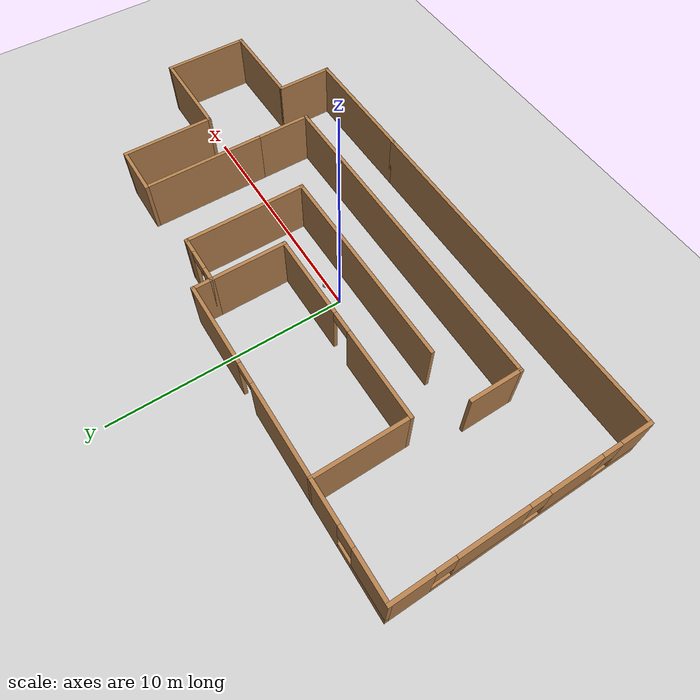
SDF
<sdf version="1.6">
 <world name="default">
  <plugin name="welcome" filename="libwelcome.so"/>
  <light name="sun" type="directional">
   <pose>0 0 10 0 -0 0</pose>
   <diffuse>0.8 0.8 0.8 1</diffuse>
   <specular>0.2 0.2 0.2 1</specular>
   <attenuation>
    <range>1000</range>
    <constant>0.9</constant>
    <linear>0.01</linear>
    <quadratic>0.001</quadratic>
   </attenuation>
   <direction>-0.5 0.1 -0.9</direction>
  </light>
  <model name="ground_plane">
   <static>1</static>
   <link name="link">
    <collision name="collision">
     <geometry><plane><normal>0 0 1</normal><size>100 100</size></plane></geometry>
     <surface><friction><ode><mu>100</mu><mu2>50</mu2></ode></friction></surface>
    </collision>
    <visual name="visual">
     <cast_shadows>0</cast_shadows>
     <geometry><plane><normal>0 0 1</normal><size>100 100</size></plane></geometry>
     <material>
      <script><uri>file://media/materials/scripts/gazebo.material</uri><name>Gazebo/Grey</name></script>
     </material>
    </visual>
   </link>
  </model>
  <gravity>0 0 -9.8</gravity>
  <magnetic_field>6e-06 2.3e-05 -4.2e-05</magnetic_field>
  <atmosphere type="adiabatic"/>
  <physics name="default_physics" default="0" type="ode">
   <max_step_size>0.001</max_step_size>
   <real_time_factor>1</real_time_factor>
   <real_time_update_rate>1000</real_time_update_rate>
  </physics>
  <scene><ambient>0.4 0.4 0.4 1</ambient><background>0.7 0.7 0.7 1</background><shadows>1</shadows></scene>
  <spherical_coordinates>
   <surface_model>EARTH_WGS84</surface_model>
   <latitude_deg>0</latitude_deg>
   <longitude_deg>0</longitude_deg>
   <elevation>0</elevation>
   <heading_deg>0</heading_deg>
  </spherical_coordinates>
  <model name="building">
   <pose>1.35791 -0.125302 0 0 -0 0</pose>
   <link name="Wall_0">
    <collision name="Wall_0_Collision">
     <geometry><box><size>9 0.15 2.5</size></box></geometry>
     <pose>0 0 1.25 0 -0 0</pose>
    </collision>
    <visual name="Wall_0_Visual">
     <pose>0 0 1.25 0 -0 0</pose>
     <geometry><box><size>9 0.15 2.5</size></box></geometry>
     <material>
      <script><uri>file://media/materials/scripts/gazebo.material</uri><name>Gazebo/Wood</name></script>
      <ambient>0.760784 0.662745 0.627451 1</ambient>
     </material>
     <meta><layer>0</layer></meta>
    </visual>
    <pose>-1.65 -0.675 0 0 -0 0</pose>
   </link>
   <link name="Wall_1">
    <collision name="Wall_1_Collision">
     <geometry><box><size>5.25 0.15 2.5</size></box></geometry>
     <pose>0 0 1.25 0 -0 0</pose>
    </collision>
    <visual name="Wall_1_Visual">
     <pose>0 0 1.25 0 -0 0</pose>
     <geometry><box><size>5.25 0.15 2.5</size></box></geometry>
     <material>
      <script><uri>file://media/materials/scripts/gazebo.material</uri><name>Gazebo/Wood</name></script>
      <ambient>0.760784 0.662745 0.627451 1</ambient>
     </material>
     <meta><layer>0</layer></meta>
    </visual>
    <pose>2.775 1.875 0 0 -0 1.5708</pose>
   </link>
   <link name="Wall_11">
    <pose>-3.5 5.175 0 0 -0 0</pose>
    <visual name="Wall_11_Visual_0">
     <pose>-2.28098 0 1.25 0 -0 0</pose>
     <geometry><box><size>3.93805 0.15 2.5</size></box></geometry>
     <material>
      <script><uri>file://media/materials/scripts/gazebo.material</uri><name>Gazebo/Wood</name></script>
      <ambient>1 1 1 1</ambient>
     </material>
     <meta><layer>0</layer></meta>
    </visual>
    <collision name="Wall_11_Collision_0">
     <geometry><box><size>3.93805 0.15 2.5</size></box></geometry>
     <pose>-2.28098 0 1.25 0 -0 0</pose>
    </collision>
    <visual name="Wall_11_Visual_1">
     <pose>2.41902 0 1.25 0 -0 0</pose>
     <geometry><box><size>3.66195 0.15 2.5</size></box></geometry>
     <material>
      <script><uri>file://media/materials/scripts/gazebo.material</uri><name>Gazebo/Wood</name></script>
      <ambient>1 1 1 1</ambient>
     </material>
     <meta><layer>0</layer></meta>
    </visual>
    <collision name="Wall_11_Collision_1">
     <geometry><box><size>3.66195 0.15 2.5</size></box></geometry>
     <pose>2.41902 0 1.25 0 -0 0</pose>
    </collision>
    <visual name="Wall_11_Visual_2">
     <pose>0.138047 0 2.25 0 -0 0</pose>
     <geometry><box><size>0.9 0.15 0.5</size></box></geometry>
     <material>
      <script><uri>file://media/materials/scripts/gazebo.material</uri><name>Gazebo/Wood</name></script>
      <ambient>1 1 1 1</ambient>
     </material>
     <meta><layer>0</layer></meta>
    </visual>
    <collision name="Wall_11_Collision_2">
     <geometry><box><size>0.9 0.15 0.5</size></box></geometry>
     <pose>0.138047 0 2.25 0 -0 0</pose>
    </collision>
   </link>
   <link name="Wall_12">
    <collision name="Wall_12_Collision">
     <geometry><box><size>0.9 0.15 2.5</size></box></geometry>
     <pose>0 0 1.25 0 -0 0</pose>
    </collision>
    <visual name="Wall_12_Visual">
     <pose>0 0 1.25 0 -0 0</pose>
     <geometry><box><size>0.9 0.15 2.5</size></box></geometry>
     <material>
      <script><uri>file://media/materials/scripts/gazebo.material</uri><name>Gazebo/Wood</name></script>
      <ambient>1 1 1 1</ambient>
     </material>
     <meta><layer>0</layer></meta>
    </visual>
    <pose>0.675001 4.8 0 0 0 -1.5708</pose>
   </link>
   <link name="Wall_14">
    <collision name="Wall_14_Collision">
     <geometry><box><size>5.5 0.15 2.5</size></box></geometry>
     <pose>0 0 1.25 0 -0 0</pose>
    </collision>
    <visual name="Wall_14_Visual">
     <pose>0 0 1.25 0 -0 0</pose>
     <geometry><box><size>5.5 0.15 2.5</size></box></geometry>
     <material>
      <script><uri>file://media/materials/scripts/gazebo.material</uri><name>Gazebo/Wood</name></script>
      <ambient>1 1 1 1</ambient>
     </material>
     <meta><layer>0</layer></meta>
    </visual>
    <pose>5.5 -5.175 0 0 -0 0</pose>
   </link>
   <link name="Wall_15">
    <collision name="Wall_15_Collision">
     <geometry><box><size>2.5 0.15 2.5</size></box></geometry>
     <pose>0 0 1.25 0 -0 0</pose>
    </collision>
    <visual name="Wall_15_Visual">
     <pose>0 0 1.25 0 -0 0</pose>
     <geometry><box><size>2.5 0.15 2.5</size></box></geometry>
     <material>
      <script><uri>file://media/materials/scripts/gazebo.material</uri><name>Gazebo/Wood</name></script>
      <ambient>1 1 1 1</ambient>
     </material>
     <meta><layer>0</layer></meta>
    </visual>
    <pose>8.175 -4 0 0 -0 1.5708</pose>
   </link>
   <link name="Wall_16">
    <collision name="Wall_16_Collision">
     <geometry><box><size>4 0.15 2.5</size></box></geometry>
     <pose>0 0 1.25 0 -0 0</pose>
    </collision>
    <visual name="Wall_16_Visual">
     <pose>0 0 1.25 0 -0 0</pose>
     <geometry><box><size>4 0.15 2.5</size></box></geometry>
     <material>
      <script><uri>file://media/materials/scripts/gazebo.material</uri><name>Gazebo/Wood</name></script>
      <ambient>1 1 1 1</ambient>
     </material>
     <meta><layer>0</layer></meta>
    </visual>
    <pose>10.1 -2.825 0 0 -0 0</pose>
   </link>
   <link name="Wall_17">
    <collision name="Wall_17_Collision">
     <geometry><box><size>3.75 0.15 2.5</size></box></geometry>
     <pose>0 0 1.25 0 -0 0</pose>
    </collision>
    <visual name="Wall_17_Visual">
     <pose>0 0 1.25 0 -0 0</pose>
     <geometry><box><size>3.75 0.15 2.5</size></box></geometry>
     <material>
      <script><uri>file://media/materials/scripts/gazebo.material</uri><name>Gazebo/Wood</name></script>
      <ambient>1 1 1 1</ambient>
     </material>
     <meta><layer>0</layer></meta>
    </visual>
    <pose>12.025 -1.025 0 0 -0 1.5708</pose>
   </link>
   <link name="Wall_18">
    <collision name="Wall_18_Collision">
     <geometry><box><size>4 0.15 2.5</size></box></geometry>
     <pose>0 0 1.25 0 -0 0</pose>
    </collision>
    <visual name="Wall_18_Visual">
     <pose>0 0 1.25 0 -0 0</pose>
     <geometry><box><size>4 0.15 2.5</size></box></geometry>
     <material>
      <script><uri>file://media/materials/scripts/gazebo.material</uri><name>Gazebo/Wood</name></script>
      <ambient>1 1 1 1</ambient>
     </material>
     <meta><layer>0</layer></meta>
    </visual>
    <pose>10.1 0.775 0 0 -0 3.14159</pose>
   </link>
   <link name="Wall_19">
    <collision name="Wall_19_Collision">
     <geometry><box><size>4 0.15 2.5</size></box></geometry>
     <pose>0 0 1.25 0 -0 0</pose>
    </collision>
    <visual name="Wall_19_Visual">
     <pose>0 0 1.25 0 -0 0</pose>
     <geometry><box><size>4 0.15 2.5</size></box></geometry>
     <material>
      <script><uri>file://media/materials/scripts/gazebo.material</uri><name>Gazebo/Wood</name></script>
      <ambient>1 1 1 1</ambient>
     </material>
     <meta><layer>0</layer></meta>
    </visual>
    <pose>8.175 2.7 0 0 -0 1.5708</pose>
   </link>
   <link name="Wall_2">
    <pose>1.725 4.425 0 0 -0 3.14159</pose>
    <visual name="Wall_2_Visual_0">
     <pose>-0.783012 0 1.25 0 -0 0</pose>
     <geometry><box><size>0.683975 0.15 2.5</size></box></geometry>
     <material>
      <script><uri>file://media/materials/scripts/gazebo.material</uri><name>Gazebo/Wood</name></script>
      <ambient>1 1 1 1</ambient>
     </material>
     <meta><layer>0</layer></meta>
    </visual>
    <collision name="Wall_2_Collision_0">
     <geometry><box><size>0.683975 0.15 2.5</size></box></geometry>
     <pose>-0.783012 0 1.25 0 -0 0</pose>
    </collision>
    <visual name="Wall_2_Visual_1">
     <pose>0.791988 0 1.25 0 -0 0</pose>
     <geometry><box><size>0.666025 0.15 2.5</size></box></geometry>
     <material>
      <script><uri>file://media/materials/scripts/gazebo.material</uri><name>Gazebo/Wood</name></script>
      <ambient>1 1 1 1</ambient>
     </material>
     <meta><layer>0</layer></meta>
    </visual>
    <collision name="Wall_2_Collision_1">
     <geometry><box><size>0.666025 0.15 2.5</size></box></geometry>
     <pose>0.791988 0 1.25 0 -0 0</pose>
    </collision>
    <visual name="Wall_2_Visual_2">
     <pose>0.008975 0 2.25 0 -0 0</pose>
     <geometry><box><size>0.9 0.15 0.5</size></box></geometry>
     <material>
      <script><uri>file://media/materials/scripts/gazebo.material</uri><name>Gazebo/Wood</name></script>
      <ambient>1 1 1 1</ambient>
     </material>
     <meta><layer>0</layer></meta>
    </visual>
    <collision name="Wall_2_Collision_2">
     <geometry><box><size>0.9 0.15 0.5</size></box></geometry>
     <pose>0.008975 0 2.25 0 -0 0</pose>
    </collision>
   </link>
   <link name="Wall_20">
    <collision name="Wall_20_Collision">
     <geometry><box><size>2.25 0.15 2.5</size></box></geometry>
     <pose>0 0 1.25 0 -0 0</pose>
    </collision>
    <visual name="Wall_20_Visual">
     <pose>0 0 1.25 0 -0 0</pose>
     <geometry><box><size>2.25 0.15 2.5</size></box></geometry>
     <material>
      <script><uri>file://media/materials/scripts/gazebo.material</uri><name>Gazebo/Wood</name></script>
      <ambient>1 1 1 1</ambient>
     </material>
     <meta><layer>0</layer></meta>
    </visual>
    <pose>7.125 4.625 0 0 -0 3.14159</pose>
   </link>
   <link name="Wall_21">
    <collision name="Wall_21_Collision">
     <geometry><box><size>5.25 0.15 2.5</size></box></geometry>
     <pose>0 0 1.25 0 -0 0</pose>
    </collision>
    <visual name="Wall_21_Visual">
     <pose>0 0 1.25 0 -0 0</pose>
     <geometry><box><size>5.25 0.15 2.5</size></box></geometry>
     <material>
      <script><uri>file://media/materials/scripts/gazebo.material</uri><name>Gazebo/Wood</name></script>
      <ambient>1 1 1 1</ambient>
     </material>
     <meta><layer>0</layer></meta>
    </visual>
    <pose>6.075 2.075 0 0 0 -1.5708</pose>
   </link>
   <link name="Wall_22">
    <collision name="Wall_22_Collision">
     <geometry><box><size>2.5 0.15 2.5</size></box></geometry>
     <pose>0 0 1.25 0 -0 0</pose>
    </collision>
    <visual name="Wall_22_Visual">
     <pose>0 0 1.25 0 -0 0</pose>
     <geometry><box><size>2.5 0.15 2.5</size></box></geometry>
     <material>
      <script><uri>file://media/materials/scripts/gazebo.material</uri><name>Gazebo/Wood</name></script>
      <ambient>1 1 1 1</ambient>
     </material>
     <meta><layer>0</layer></meta>
    </visual>
    <pose>6.075 -1.65 0 0 0 -1.5708</pose>
   </link>
   <link name="Wall_23">
    <collision name="Wall_23_Collision">
     <geometry><box><size>14.5 0.15 2.5</size></box></geometry>
     <pose>0 0 1.25 0 -0 0</pose>
    </collision>
    <visual name="Wall_23_Visual">
     <pose>0 0 1.25 0 -0 0</pose>
     <geometry><box><size>14.5 0.15 2.5</size></box></geometry>
     <material>
      <script><uri>file://media/materials/scripts/gazebo.material</uri><name>Gazebo/Wood</name></script>
      <ambient>1 1 1 1</ambient>
     </material>
     <meta><layer>0</layer></meta>
    </visual>
    <pose>-1.1 -2.825 0 0 -0 3.14159</pose>
   </link>
   <link name="Wall_24">
    <collision name="Wall_24_Collision">
     <geometry><box><size>2.25 0.15 2.5</size></box></geometry>
     <pose>0 0 1.25 0 -0 0</pose>
    </collision>
    <visual name="Wall_24_Visual">
     <pose>0 0 1.25 0 -0 0</pose>
     <geometry><box><size>2.25 0.15 2.5</size></box></geometry>
     <material>
      <script><uri>file://media/materials/scripts/gazebo.material</uri><name>Gazebo/Wood</name></script>
      <ambient>1 1 1 1</ambient>
     </material>
     <meta><layer>0</layer></meta>
    </visual>
    <pose>-8.275 -1.775 0 0 -0 1.5708</pose>
   </link>
   <link name="Wall_3">
    <collision name="Wall_3_Collision">
     <geometry><box><size>3.25 0.15 2.5</size></box></geometry>
     <pose>0 0 1.25 0 -0 0</pose>
    </collision>
    <visual name="Wall_3_Visual">
     <pose>0 0 1.25 0 -0 0</pose>
     <geometry><box><size>3.25 0.15 2.5</size></box></geometry>
     <material>
      <script><uri>file://media/materials/scripts/gazebo.material</uri><name>Gazebo/Wood</name></script>
      <ambient>1 1 1 1</ambient>
     </material>
     <meta><layer>0</layer></meta>
    </visual>
    <pose>0.675001 2.875 0 0 0 -1.5708</pose>
   </link>
   <link name="Wall_4">
    <pose>-3.5 1.325 0 0 -0 3.14159</pose>
    <visual name="Wall_4_Visual_0">
     <pose>-2.38843 0 1.25 0 -0 0</pose>
     <geometry><box><size>3.72313 0.15 2.5</size></box></geometry>
     <material>
      <script><uri>file://media/materials/scripts/gazebo.material</uri><name>Gazebo/Wood</name></script>
      <ambient>0.760784 0.662745 0.627451 1</ambient>
     </material>
     <meta><layer>0</layer></meta>
    </visual>
    <collision name="Wall_4_Collision_0">
     <geometry><box><size>3.72313 0.15 2.5</size></box></geometry>
     <pose>-2.38843 0 1.25 0 -0 0</pose>
    </collision>
    <visual name="Wall_4_Visual_1">
     <pose>2.31157 0 1.25 0 -0 0</pose>
     <geometry><box><size>3.87687 0.15 2.5</size></box></geometry>
     <material>
      <script><uri>file://media/materials/scripts/gazebo.material</uri><name>Gazebo/Wood</name></script>
      <ambient>0.760784 0.662745 0.627451 1</ambient>
     </material>
     <meta><layer>0</layer></meta>
    </visual>
    <collision name="Wall_4_Collision_1">
     <geometry><box><size>3.87687 0.15 2.5</size></box></geometry>
     <pose>2.31157 0 1.25 0 -0 0</pose>
    </collision>
    <visual name="Wall_4_Visual_2">
     <pose>-0.076867 0 2.25 0 -0 0</pose>
     <geometry><box><size>0.9 0.15 0.5</size></box></geometry>
     <material>
      <script><uri>file://media/materials/scripts/gazebo.material</uri><name>Gazebo/Wood</name></script>
      <ambient>0.760784 0.662745 0.627451 1</ambient>
     </material>
     <meta><layer>0</layer></meta>
    </visual>
    <collision name="Wall_4_Collision_2">
     <geometry><box><size>0.9 0.15 0.5</size></box></geometry>
     <pose>-0.076867 0 2.25 0 -0 0</pose>
    </collision>
   </link>
   <link name="Wall_5">
    <collision name="Wall_5_Collision">
     <geometry><box><size>4 0.15 2.5</size></box></geometry>
     <pose>0 0 1.25 0 -0 0</pose>
    </collision>
    <visual name="Wall_5_Visual">
     <pose>0 0 1.25 0 -0 0</pose>
     <geometry><box><size>4 0.15 2.5</size></box></geometry>
     <material>
      <script><uri>file://media/materials/scripts/gazebo.material</uri><name>Gazebo/Wood</name></script>
      <ambient>1 1 1 1</ambient>
     </material>
     <meta><layer>0</layer></meta>
    </visual>
    <pose>-7.675 3.25 0 0 -0 1.5708</pose>
   </link>
   <link name="Wall_6">
    <pose>-9.85 5.175 0 0 -0 3.14159</pose>
    <visual name="Wall_6_Visual_0">
     <pose>-1.37234 0 1.25 0 -0 0</pose>
     <geometry><box><size>1.75531 0.15 2.5</size></box></geometry>
     <material>
      <script><uri>file://media/materials/scripts/gazebo.material</uri><name>Gazebo/Wood</name></script>
      <ambient>1 1 1 1</ambient>
     </material>
     <meta><layer>0</layer></meta>
    </visual>
    <collision name="Wall_6_Collision_0">
     <geometry><box><size>1.75531 0.15 2.5</size></box></geometry>
     <pose>-1.37234 0 1.25 0 -0 0</pose>
    </collision>
    <visual name="Wall_6_Visual_1">
     <pose>0.877655 0 0.25 0 -0 0</pose>
     <geometry><box><size>2.74469 0.15 0.5</size></box></geometry>
     <material>
      <script><uri>file://media/materials/scripts/gazebo.material</uri><name>Gazebo/Wood</name></script>
      <ambient>1 1 1 1</ambient>
     </material>
     <meta><layer>0</layer></meta>
    </visual>
    <collision name="Wall_6_Collision_1">
     <geometry><box><size>2.74469 0.15 0.5</size></box></geometry>
     <pose>0.877655 0 0.25 0 -0 0</pose>
    </collision>
    <visual name="Wall_6_Visual_2">
     <pose>1.27765 0 1.5 0 -0 0</pose>
     <geometry><box><size>1.94469 0.15 2</size></box></geometry>
     <material>
      <script><uri>file://media/materials/scripts/gazebo.material</uri><name>Gazebo/Wood</name></script>
      <ambient>1 1 1 1</ambient>
     </material>
     <meta><layer>0</layer></meta>
    </visual>
    <collision name="Wall_6_Collision_2">
     <geometry><box><size>1.94469 0.15 2</size></box></geometry>
     <pose>1.27765 0 1.5 0 -0 0</pose>
    </collision>
    <visual name="Wall_6_Visual_3">
     <pose>-0.09469 0 1.9 0 -0 0</pose>
     <geometry><box><size>0.8 0.15 1.2</size></box></geometry>
     <material>
      <script><uri>file://media/materials/scripts/gazebo.material</uri><name>Gazebo/Wood</name></script>
      <ambient>1 1 1 1</ambient>
     </material>
     <meta><layer>0</layer></meta>
    </visual>
    <collision name="Wall_6_Collision_3">
     <geometry><box><size>0.8 0.15 1.2</size></box></geometry>
     <pose>-0.09469 0 1.9 0 -0 0</pose>
    </collision>
   </link>
   <link name="Wall_7">
    <pose>-12.025 0 0 0 0 -1.5708</pose>
    <visual name="Wall_7_Visual_0">
     <pose>-4.38665 0 1.25 0 -0 0</pose>
     <geometry><box><size>1.7267 0.15 2.5</size></box></geometry>
     <material>
      <script><uri>file://media/materials/scripts/gazebo.material</uri><name>Gazebo/Wood</name></script>
      <ambient>1 1 1 1</ambient>
     </material>
     <meta><layer>0</layer></meta>
    </visual>
    <collision name="Wall_7_Collision_0">
     <geometry><box><size>1.7267 0.15 2.5</size></box></geometry>
     <pose>-4.38665 0 1.25 0 -0 0</pose>
    </collision>
    <visual name="Wall_7_Visual_1">
     <pose>0.863348 0 0.25 0 -0 0</pose>
     <geometry><box><size>8.77331 0.15 0.5</size></box></geometry>
     <material>
      <script><uri>file://media/materials/scripts/gazebo.material</uri><name>Gazebo/Wood</name></script>
      <ambient>1 1 1 1</ambient>
     </material>
     <meta><layer>0</layer></meta>
    </visual>
    <collision name="Wall_7_Collision_1">
     <geometry><box><size>8.77331 0.15 0.5</size></box></geometry>
     <pose>0.863348 0 0.25 0 -0 0</pose>
    </collision>
    <visual name="Wall_7_Visual_2">
     <pose>-1.31848 0 1.5 0 -0 0</pose>
     <geometry><box><size>2.80965 0.15 2</size></box></geometry>
     <material>
      <script><uri>file://media/materials/scripts/gazebo.material</uri><name>Gazebo/Wood</name></script>
      <ambient>1 1 1 1</ambient>
     </material>
     <meta><layer>0</layer></meta>
    </visual>
    <collision name="Wall_7_Collision_2">
     <geometry><box><size>2.80965 0.15 2</size></box></geometry>
     <pose>-1.31848 0 1.5 0 -0 0</pose>
    </collision>
    <visual name="Wall_7_Visual_3">
     <pose>1.98526 0 1.5 0 -0 0</pose>
     <geometry><box><size>2.19784 0.15 2</size></box></geometry>
     <material>
      <script><uri>file://media/materials/scripts/gazebo.material</uri><name>Gazebo/Wood</name></script>
      <ambient>1 1 1 1</ambient>
     </material>
     <meta><layer>0</layer></meta>
    </visual>
    <collision name="Wall_7_Collision_3">
     <geometry><box><size>2.19784 0.15 2</size></box></geometry>
     <pose>1.98526 0 1.5 0 -0 0</pose>
    </collision>
    <visual name="Wall_7_Visual_4">
     <pose>4.56709 0 1.5 0 -0 0</pose>
     <geometry><box><size>1.36582 0.15 2</size></box></geometry>
     <material>
      <script><uri>file://media/materials/scripts/gazebo.material</uri><name>Gazebo/Wood</name></script>
      <ambient>1 1 1 1</ambient>
     </material>
     <meta><layer>0</layer></meta>
    </visual>
    <collision name="Wall_7_Collision_4">
     <geometry><box><size>1.36582 0.15 2</size></box></geometry>
     <pose>4.56709 0 1.5 0 -0 0</pose>
    </collision>
    <visual name="Wall_7_Visual_5">
     <pose>-3.12331 0 1.9 0 -0 0</pose>
     <geometry><box><size>0.8 0.15 1.2</size></box></geometry>
     <material>
      <script><uri>file://media/materials/scripts/gazebo.material</uri><name>Gazebo/Wood</name></script>
      <ambient>1 1 1 1</ambient>
     </material>
     <meta><layer>0</layer></meta>
    </visual>
    <collision name="Wall_7_Collision_5">
     <geometry><box><size>0.8 0.15 1.2</size></box></geometry>
     <pose>-3.12331 0 1.9 0 -0 0</pose>
    </collision>
    <visual name="Wall_7_Visual_6">
     <pose>0.486342 0 1.9 0 -0 0</pose>
     <geometry><box><size>0.8 0.15 1.2</size></box></geometry>
     <material>
      <script><uri>file://media/materials/scripts/gazebo.material</uri><name>Gazebo/Wood</name></script>
      <ambient>1 1 1 1</ambient>
     </material>
     <meta><layer>0</layer></meta>
    </visual>
    <collision name="Wall_7_Collision_6">
     <geometry><box><size>0.8 0.15 1.2</size></box></geometry>
     <pose>0.486342 0 1.9 0 -0 0</pose>
    </collision>
    <visual name="Wall_7_Visual_7">
     <pose>3.48419 0 1.9 0 -0 0</pose>
     <geometry><box><size>0.8 0.15 1.2</size></box></geometry>
     <material>
      <script><uri>file://media/materials/scripts/gazebo.material</uri><name>Gazebo/Wood</name></script>
      <ambient>1 1 1 1</ambient>
     </material>
     <meta><layer>0</layer></meta>
    </visual>
    <collision name="Wall_7_Collision_7">
     <geometry><box><size>0.8 0.15 1.2</size></box></geometry>
     <pose>3.48419 0 1.9 0 -0 0</pose>
    </collision>
   </link>
   <link name="Wall_8">
    <collision name="Wall_8_Collision">
     <geometry><box><size>15 0.15 2.5</size></box></geometry>
     <pose>0 0 1.25 0 -0 0</pose>
    </collision>
    <visual name="Wall_8_Visual">
     <pose>0 0 1.25 0 -0 0</pose>
     <geometry><box><size>15 0.15 2.5</size></box></geometry>
     <material>
      <script><uri>file://media/materials/scripts/gazebo.material</uri><name>Gazebo/Wood</name></script>
      <ambient>1 1 1 1</ambient>
     </material>
     <meta><layer>0</layer></meta>
    </visual>
    <pose>-4.6 -5.175 0 0 -0 0</pose>
   </link>
   <static>1</static>
  </model>
  <audio><device>default</device></audio>
  <model name="my_ball">
   <link name="link_2">
    <inertial>
     <mass>1</mass>
     <inertia><ixx>0.1</ixx><ixy>0</ixy><ixz>0</ixz><iyy>0.1</iyy><iyz>0</iyz><izz>0.1</izz></inertia>
    </inertial>
    <pose>0.135637 -0.125473 0.5 0 -0 0</pose>
    <visual name="visual">
     <geometry><sphere><radius>0.1</radius></sphere></geometry>
     <material>
      <lighting>1</lighting>
      <script><uri>file://media/materials/scripts/gazebo.material</uri><name>Gazebo/Grey</name></script>
      <shader type="vertex"><normal_map>__default__</normal_map></shader>
      <ambient>1 1 1 1</ambient>
      <diffuse>1 1 1 1</diffuse>
      <specular>1 1 1 1</specular>
      <emissive>1 1 1 1</emissive>
     </material>
    </visual>
    <collision name="collision">
     <geometry><sphere><radius>0.1</radius></sphere></geometry>
     <surface>
      <friction>
       <ode><mu>1</mu><mu2>1</mu2><fdir1>0 0 0</fdir1><slip1>0</slip1><slip2>0</slip2></ode>
       <torsional>
        <coefficient>1</coefficient>
        <patch_radius>0</patch_radius>
        <surface_radius>0</surface_radius>
        <use_patch_radius>1</use_patch_radius>
        <ode><slip>0</slip></ode>
       </torsional>
      </friction>
      <bounce><restitution_coefficient>0</restitution_coefficient><threshold>1e+06</threshold></bounce>
      <contact>
       <collide_without_contact>0</collide_without_contact>
       <collide_without_contact_bitmask>1</collide_without_contact_bitmask>
       <collide_bitmask>1</collide_bitmask>
       <ode>
        <soft_cfm>0</soft_cfm>
        <soft_erp>0.2</soft_erp>
        <kp>1e+13</kp>
        <kd>1</kd>
        <max_vel>0.01</max_vel>
        <min_depth>0</min_depth>
       </ode>
       <bullet>
        <split_impulse>1</split_impulse>
        <split_impulse_penetration_threshold>-0.01</split_impulse_penetration_threshold>
        <soft_cfm>0</soft_cfm>
        <soft_erp>0.2</soft_erp>
        <kp>1e+13</kp>
        <kd>1</kd>
       </bullet>
      </contact>
     </surface>
    </collision>
   </link>
   <static>0</static>
   <pose>0.800091 0.235464 -0.4 0 -0 0</pose>
  </model>
 </world>
</sdf>
